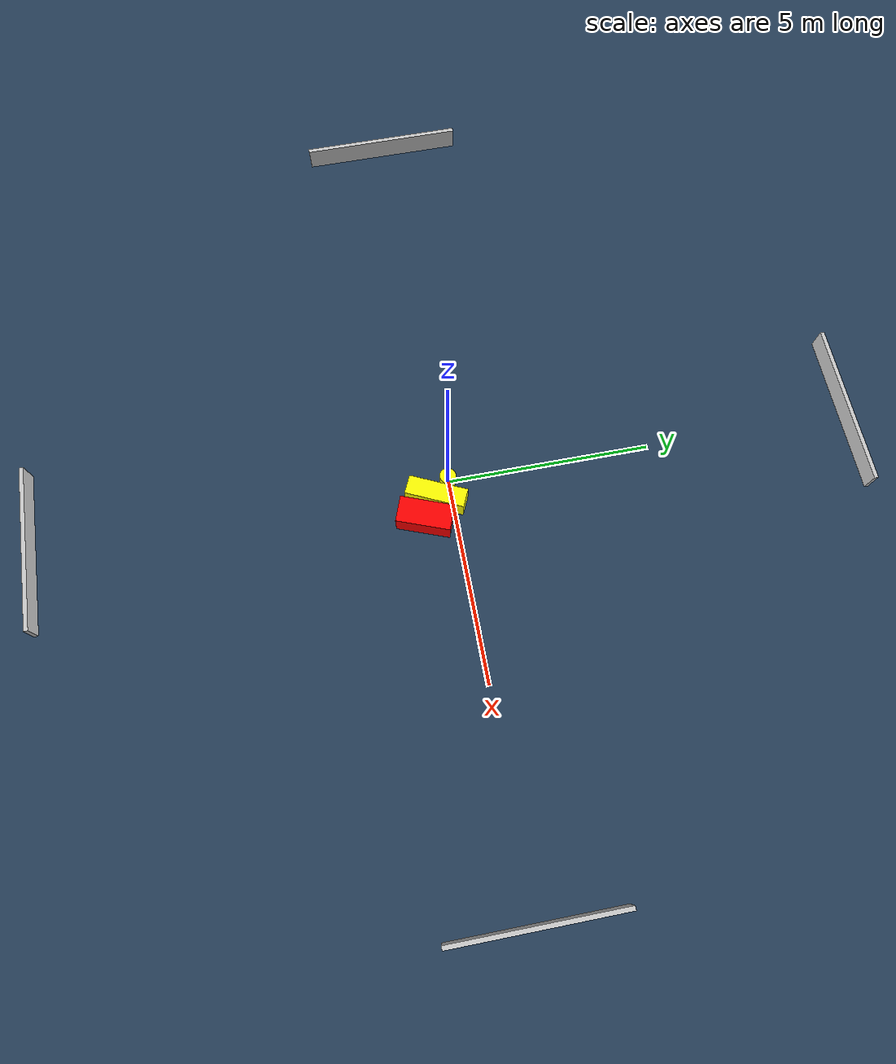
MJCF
<?xml version="1.0" ?>
<mujoco model="generated_environment">
  <option timestep="0.01" integrator="RK4" cone="elliptic"/>
  <default>
    <geom density="1"/>
  </default>
  <asset>
    <texture builtin="gradient" height="3072" name="skybox" rgb1="0.3 0.5 0.7" rgb2="0 0 0" type="skybox" width="512"/>
    <texture builtin="checker" height="300" name="groundplane" rgb1="0.2 0.3 0.4" rgb2="0.1 0.2 0.3" type="2d" width="300"/>
    <material name="groundplane" reflectance="0.2" texrepeat="5 5" texture="groundplane"/>
  </asset>
  <worldbody>
    <light dir="0 0 -1" directional="true" pos="0 0 1.5"/>
    <geom condim="3" friction="0.5 0.005 0.001" material="groundplane" name="floor" pos="0 0 0" size="0 0 0.05" type="plane"/>
    <body name="walls">
      <geom name="wall_1" condim="4" pos="-10.0 0.0 0.3" rgba="0.800000011920929 0.800000011920929 0.800000011920929 1.0" size="0.05 2.0 0.3" type="box"/>
      <geom name="wall_2" condim="4" pos="10.0 0.0 0.3" rgba="0.800000011920929 0.800000011920929 0.800000011920929 1.0" size="0.05 2.0 0.3" type="box"/>
      <geom name="wall_3" condim="4" pos="0.0 -10.0 0.3" rgba="0.800000011920929 0.800000011920929 0.800000011920929 1.0" size="2.0 0.05 0.3" type="box"/>
      <geom name="wall_4" condim="4" pos="0.0 10.0 0.3" rgba="0.800000011920929 0.800000011920929 0.800000011920929 1.0" size="2.0 0.05 0.3" type="box"/>
    </body>
    <body name="robot">
      <joint name="joint_x" type="slide" pos="0 0 0" axis="1 0 0"/>
      <joint name="joint_y" type="slide" pos="0 0 0" axis="0 1 0"/>
      <geom name="robot" type="cylinder" pos="0.0 0.0 0.2" size="0.2 0.2 0.0" mass="5.0" friction="1.0 0.005 0.0001" condim="4" rgba="1.0 1.0 0.0 1.0"/>
    </body>
    <body name="obstacle_1_movable">
      <geom name="obstacle_1_movable" condim="4" pos="0.40315951436933956 -0.35113175276155517 0.3" euler="0 0 245.18524161659244" friction="0.0 0.005 0.001" rgba="1.0 1.0 0.0 1.0" size="0.719263248212479 0.22718678730079633 0.3" type="box" mass="0.1"/>
      <joint type="free"/>
    </body>
    <body name="obstacle_2_static">
      <geom name="obstacle_2_static" condim="4" pos="0.8913512160478836 -0.7119571776072444 0.3" euler="0 0 339.49752159987463" friction="0.0 0.005 0.001" rgba="1.0 0.0 0.0 1.0" size="0.3121765828852241 0.6498621463821377 0.3" type="box"/>
    </body>
  </worldbody>
  <actuator>
    <motor name="actuator_x" joint="joint_x" gear="1" ctrlrange="-1 1"/>
    <motor name="actuator_y" joint="joint_y" gear="1" ctrlrange="-1 1"/>
  </actuator>
</mujoco>
